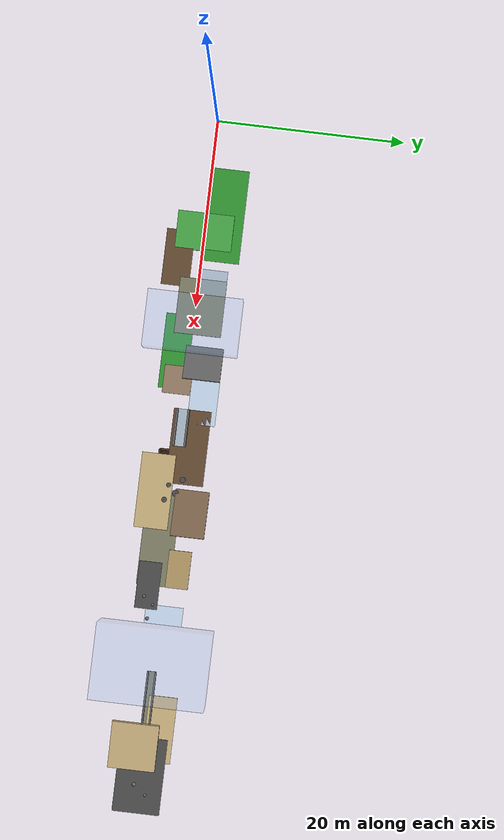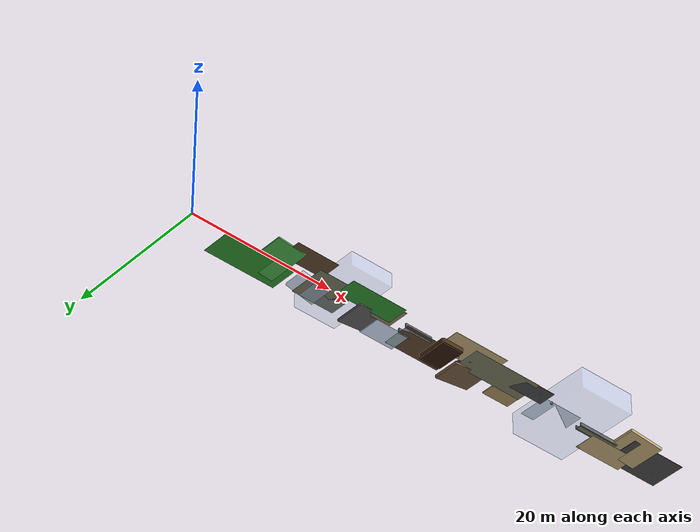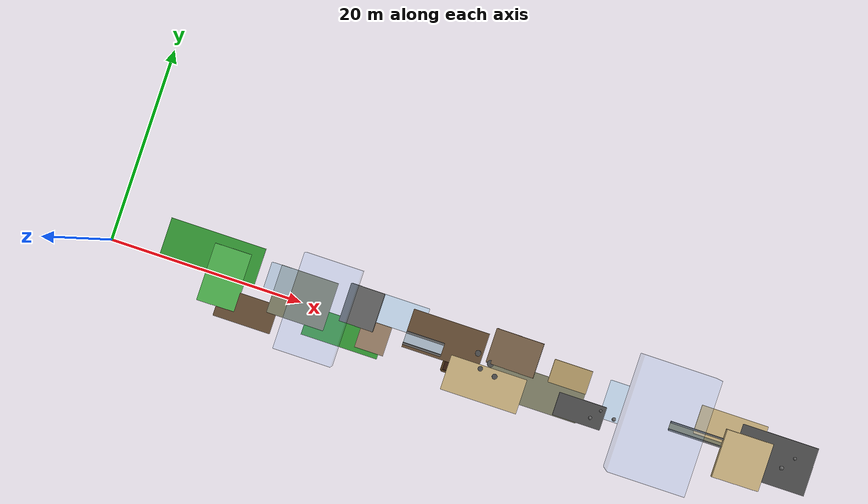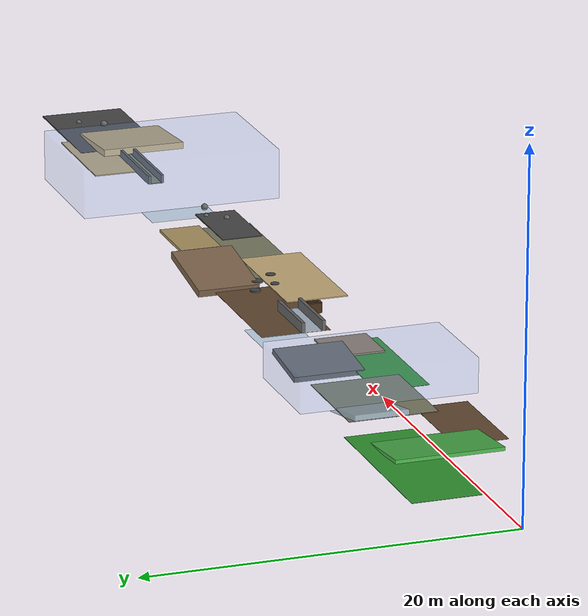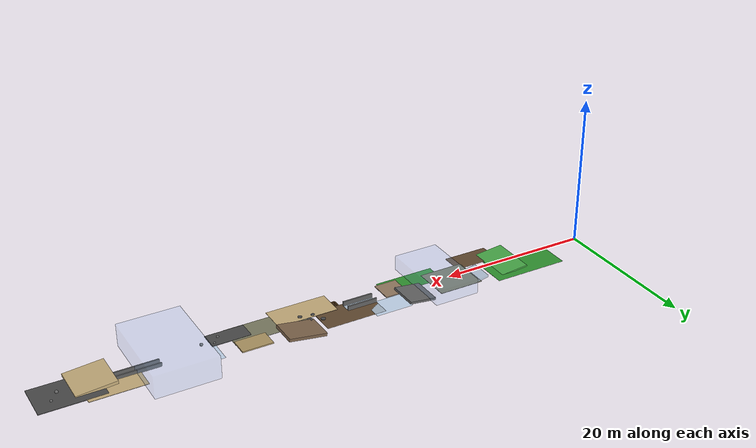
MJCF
<mujoco model="terrain_variations">
  <compiler angle="radian" coordinate="local" inertiafromgeom="true"/>

  <option timestep="0.001" iterations="50" solver="PGS" gravity="0 0 -9.81"/>

  <default>
    <geom conaffinity="1" contype="1" density="1000"/>
    <joint armature="0" damping="0" limited="false"/>
  </default>

  <asset>
    <texture builtin="flat" name="texgrass" rgb1="0.2 0.6 0.2" type="2d" width="100" height="100"/>
    <texture builtin="flat" name="texmud" rgb1="0.4 0.3 0.2" type="2d" width="100" height="100"/>
    <texture builtin="flat" name="texgravel" rgb1="0.5 0.5 0.4" type="2d" width="100" height="100"/>
    <texture builtin="flat" name="texice" rgb1="0.8 0.9 1.0" type="2d" width="100" height="100"/>
    <texture builtin="flat" name="texsand" rgb1="0.8 0.7 0.5" type="2d" width="100" height="100"/>
    <texture builtin="flat" name="texrock" rgb1="0.3 0.3 0.3" type="2d" width="100" height="100"/>

    <material name="MatGrass" reflectance="0.1" shininess="0.1" specular="0.1" texrepeat="10 10" texture="texgrass"/>
    <material name="MatMud" reflectance="0.05" shininess="0.05" specular="0.05" texrepeat="8 8" texture="texmud"/>
    <material name="MatGravel" reflectance="0.2" shininess="0.2" specular="0.2" texrepeat="15 15" texture="texgravel"/>
    <material name="MatIce" reflectance="0.9" shininess="1" specular="1" texrepeat="5 5" texture="texice"/>
    <material name="MatSand" reflectance="0.1" shininess="0.1" specular="0.1" texrepeat="12 12" texture="texsand"/>
    <material name="MatRock" reflectance="0.3" shininess="0.4" specular="0.4" texrepeat="6 6" texture="texrock"/>
  </asset>

  <worldbody>
    <!-- Grass terrain - normal friction -->
    <geom name="grass_patch1" type="box" pos="10 2 0.01" size="5 2 0.01"
          material="MatGrass" rgba="0.2 0.6 0.2 1" friction="1.0 0.1 0.1"/>
    <geom name="grass_patch2" type="box" pos="25 -1.5 0.01" size="4 1.5 0.01"
          material="MatGrass" rgba="0.2 0.6 0.2 1" friction="1.0 0.1 0.1"/>

    <!-- Mud terrain - low friction, high damping -->
    <geom name="mud_patch1" type="box" pos="15 -2.5 0.005" size="3 1.5 0.005"
          material="MatMud" rgba="0.4 0.3 0.2 1" friction="0.3 0.05 0.05"/>
    <geom name="mud_patch2" type="box" pos="35 1 0.005" size="4 2 0.005"
          material="MatMud" rgba="0.4 0.3 0.2 1" friction="0.3 0.05 0.05"/>

    <!-- Gravel terrain - medium friction, rough surface -->
    <geom name="gravel_patch1" type="box" pos="20 0.5 0.02" size="3 2.5 0.02"
          material="MatGravel" rgba="0.5 0.5 0.4 1" friction="0.8 0.15 0.15"/>
    <geom name="gravel_patch2" type="box" pos="45 -1 0.02" size="5 1.8 0.02"
          material="MatGravel" rgba="0.5 0.5 0.4 1" friction="0.8 0.15 0.15"/>

    <!-- Ice terrain - very low friction -->
    <geom name="ice_patch1" type="box" pos="30 2 0.005" size="2.5 1.5 0.005"
          material="MatIce" rgba="0.8 0.9 1.0 0.8" friction="0.1 0.01 0.01"/>
    <geom name="ice_patch2" type="box" pos="55 0.5 0.005" size="3 2 0.005"
          material="MatIce" rgba="0.8 0.9 1.0 0.8" friction="0.1 0.01 0.01"/>

    <!-- Sand terrain - soft, energy absorbing -->
    <geom name="sand_patch1" type="box" pos="40 -2 0.03" size="4 1.8 0.03"
          material="MatSand" rgba="0.8 0.7 0.5 1" friction="0.6 0.2 0.2"/>
    <geom name="sand_patch2" type="box" pos="65 1.5 0.03" size="3.5 1.5 0.03"
          material="MatSand" rgba="0.8 0.7 0.5 1" friction="0.6 0.2 0.2"/>

    <!-- Rocky terrain - high friction, uneven -->
    <geom name="rock_patch1" type="box" pos="50 -1.5 0.04" size="2.5 1.2 0.04"
          material="MatRock" rgba="0.3 0.3 0.3 1" friction="1.2 0.3 0.3"/>
    <geom name="rock_patch2" type="box" pos="70 0 0.04" size="4 2.5 0.04"
          material="MatRock" rgba="0.3 0.3 0.3 1" friction="1.2 0.3 0.3"/>

    <!-- Uneven rocky terrain with individual rocks -->
    <geom name="rock1" type="sphere" pos="52 -0.8 0.08" size="0.15"
          material="MatRock" rgba="0.4 0.4 0.4 1" friction="1.3 0.3 0.3"/>
    <geom name="rock2" type="sphere" pos="53.5 -1.2 0.12" size="0.2"
          material="MatRock" rgba="0.4 0.4 0.4 1" friction="1.3 0.3 0.3"/>
    <geom name="rock3" type="sphere" pos="51.2 -1.8 0.1" size="0.18"
          material="MatRock" rgba="0.4 0.4 0.4 1" friction="1.3 0.3 0.3"/>
    <geom name="rock4" type="sphere" pos="72 0.8 0.09" size="0.16"
          material="MatRock" rgba="0.4 0.4 0.4 1" friction="1.3 0.3 0.3"/>
    <geom name="rock5" type="sphere" pos="71 -0.5 0.14" size="0.22"
          material="MatRock" rgba="0.4 0.4 0.4 1" friction="1.3 0.3 0.3"/>

    <!-- Slippery slopes -->
    <geom name="slope1" type="box" pos="18 1.5 0.15" size="2 1.5 0.15"
          material="MatIce" rgba="0.7 0.8 0.9 0.7" friction="0.15 0.02 0.02" euler="0 0.2 0"/>
    <geom name="slope2" type="box" pos="42 2 0.2" size="2.5 1.8 0.2"
          material="MatMud" rgba="0.5 0.4 0.3 1" friction="0.25 0.03 0.03" euler="0 -0.15 0"/>

    <!-- Unstable platforms (will move slightly when stepped on) -->
    <body name="unstable_platform1" pos="28 -1 0.1">
      <joint name="unstable1_x" type="slide" axis="1 0 0" range="-0.1 0.1" damping="20"/>
      <joint name="unstable1_y" type="slide" axis="0 1 0" range="-0.1 0.1" damping="20"/>
      <joint name="unstable1_z" type="slide" axis="0 0 1" range="-0.05 0.05" damping="30"/>
      <joint name="unstable1_rx" type="hinge" axis="1 0 0" range="-0.1 0.1" damping="15"/>
      <joint name="unstable1_ry" type="hinge" axis="0 1 0" range="-0.1 0.1" damping="15"/>
      <geom name="unstable_plat1" type="box" size="1.5 1.5 0.05"
            material="MatGravel" rgba="0.6 0.5 0.4 1" friction="0.7 0.1 0.1"/>
      <inertial pos="0 0 0" mass="50" diaginertia="5 5 1"/>
    </body>

    <body name="unstable_platform2" pos="48 1.5 0.15">
      <joint name="unstable2_x" type="slide" axis="1 0 0" range="-0.15 0.15" damping="25"/>
      <joint name="unstable2_y" type="slide" axis="0 1 0" range="-0.15 0.15" damping="25"/>
      <joint name="unstable2_z" type="slide" axis="0 0 1" range="-0.08 0.08" damping="35"/>
      <joint name="unstable2_rx" type="hinge" axis="1 0 0" range="-0.15 0.15" damping="20"/>
      <joint name="unstable2_ry" type="hinge" axis="0 1 0" range="-0.15 0.15" damping="20"/>
      <geom name="unstable_plat2" type="box" size="2 1.2 0.08"
            material="MatSand" rgba="0.7 0.6 0.4 1" friction="0.5 0.15 0.15"/>
      <inertial pos="0 0 0" mass="60" diaginertia="6 6 1.2"/>
    </body>

    <!-- Narrow passages with different surface materials -->
    <geom name="narrow_wall1_left" type="box" pos="33 0.6 0.3" size="2 0.1 0.3"
          material="MatRock" rgba="0.4 0.4 0.4 1"/>
    <geom name="narrow_wall1_right" type="box" pos="33 -0.6 0.3" size="2 0.1 0.3"
          material="MatRock" rgba="0.4 0.4 0.4 1"/>
    <geom name="narrow_floor1" type="box" pos="33 0 0.01" size="2 0.5 0.01"
          material="MatIce" rgba="0.8 0.9 1.0 0.8" friction="0.12 0.01 0.01"/>

    <geom name="narrow_wall2_left" type="box" pos="62 0.4 0.25" size="3 0.08 0.25"
          material="MatRock" rgba="0.4 0.4 0.4 1"/>
    <geom name="narrow_wall2_right" type="box" pos="62 -0.4 0.25" size="3 0.08 0.25"
          material="MatRock" rgba="0.4 0.4 0.4 1"/>
    <geom name="narrow_floor2" type="box" pos="62 0 0.02" size="3 0.32 0.02"
          material="MatGravel" rgba="0.5 0.5 0.4 1" friction="0.9 0.2 0.2"/>

    <!-- Holes and pits -->
    <geom name="pit_wall1" type="box" pos="37 2 -0.3" size="1.5 0.1 0.3" rgba="0.3 0.2 0.1 1"/>
    <geom name="pit_wall2" type="box" pos="37 -2 -0.3" size="1.5 0.1 0.3" rgba="0.3 0.2 0.1 1"/>
    <geom name="pit_wall3" type="box" pos="35.5 0 -0.3" size="0.1 2 0.3" rgba="0.3 0.2 0.1 1"/>
    <geom name="pit_wall4" type="box" pos="38.5 0 -0.3" size="0.1 2 0.3" rgba="0.3 0.2 0.1 1"/>
    <geom name="pit_bottom" type="box" pos="37 0 -0.6" size="1.5 2 0.01" rgba="0.2 0.1 0.05 1"/>

    <!-- Weather effects simulation - wind zones (invisible, affect physics) -->
    <geom name="wind_zone1" type="box" pos="22 0 1" size="3 5 1" rgba="0.5 0.7 1 0.1"
          contype="0" conaffinity="0"/>
    <geom name="wind_zone2" type="box" pos="58 0 1.5" size="4 6 1.5" rgba="0.5 0.7 1 0.1"
          contype="0" conaffinity="0"/>

    <!-- Elevation changes with different materials -->
    <geom name="hill1" type="box" pos="12 0 0.1" size="2 3 0.1"
          material="MatGrass" rgba="0.3 0.7 0.3 1" friction="1.1 0.1 0.1" euler="0 0.1 0"/>
    <geom name="hill2" type="box" pos="26 1.5 0.15" size="1.8 2 0.15"
          material="MatRock" rgba="0.4 0.4 0.4 1" friction="1.3 0.2 0.2" euler="0 -0.12 0"/>
    <geom name="hill3" type="box" pos="67 -1 0.2" size="2.5 2.5 0.2"
          material="MatSand" rgba="0.8 0.7 0.5 1" friction="0.7 0.25 0.25" euler="0 0.08 0"/>

    <!-- Textured stepping stones -->
    <geom name="stone1" type="cylinder" pos="38.5 0.8 0.05" size="0.3 0.05"
          material="MatRock" rgba="0.5 0.5 0.5 1" friction="1.4 0.3 0.3"/>
    <geom name="stone2" type="cylinder" pos="39.2 -0.6 0.05" size="0.25 0.05"
          material="MatRock" rgba="0.5 0.5 0.5 1" friction="1.4 0.3 0.3"/>
    <geom name="stone3" type="cylinder" pos="40 0.2 0.05" size="0.35 0.05"
          material="MatRock" rgba="0.5 0.5 0.5 1" friction="1.4 0.3 0.3"/>
    <geom name="stone4" type="cylinder" pos="40.8 -0.9 0.05" size="0.28 0.05"
          material="MatRock" rgba="0.5 0.5 0.5 1" friction="1.4 0.3 0.3"/>
  </worldbody>

  <actuator>
    <!-- Actuators for unstable platforms -->
    <motor name="unstable1_x_motor" joint="unstable1_x" gear="10" ctrlrange="-10 10"/>
    <motor name="unstable1_y_motor" joint="unstable1_y" gear="10" ctrlrange="-10 10"/>
    <motor name="unstable1_z_motor" joint="unstable1_z" gear="15" ctrlrange="-15 15"/>
    <motor name="unstable1_rx_motor" joint="unstable1_rx" gear="8" ctrlrange="-8 8"/>
    <motor name="unstable1_ry_motor" joint="unstable1_ry" gear="8" ctrlrange="-8 8"/>

    <motor name="unstable2_x_motor" joint="unstable2_x" gear="12" ctrlrange="-12 12"/>
    <motor name="unstable2_y_motor" joint="unstable2_y" gear="12" ctrlrange="-12 12"/>
    <motor name="unstable2_z_motor" joint="unstable2_z" gear="18" ctrlrange="-18 18"/>
    <motor name="unstable2_rx_motor" joint="unstable2_rx" gear="10" ctrlrange="-10 10"/>
    <motor name="unstable2_ry_motor" joint="unstable2_ry" gear="10" ctrlrange="-10 10"/>
  </actuator>
</mujoco>
